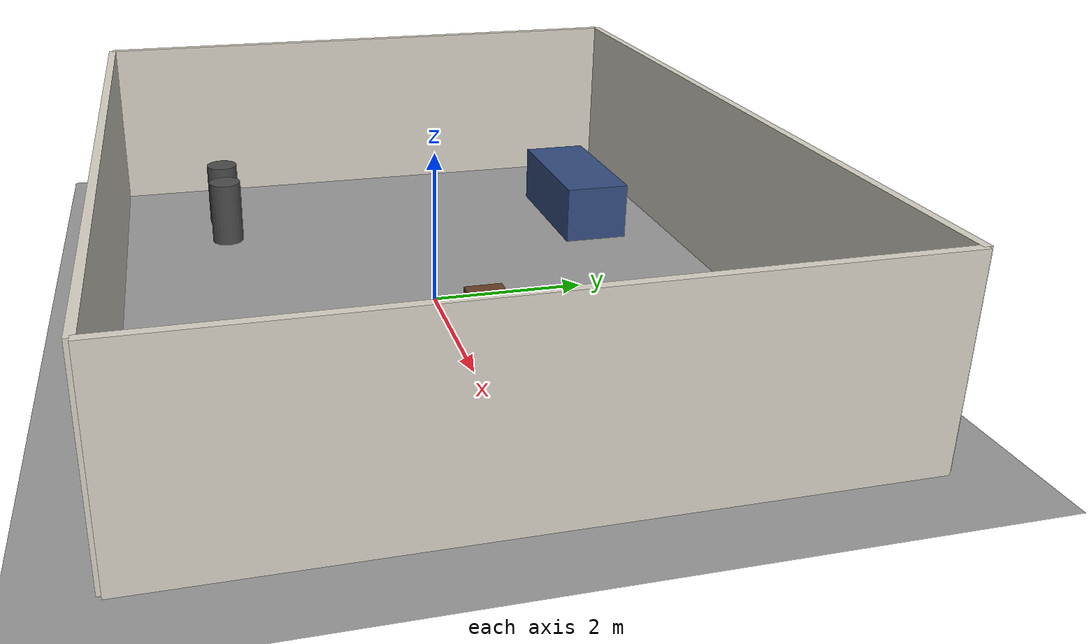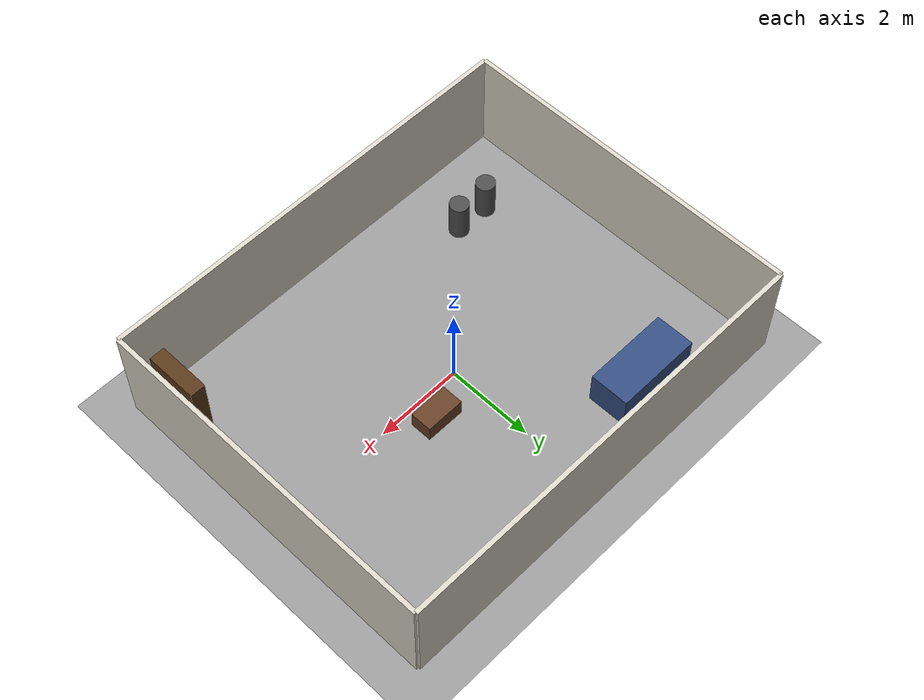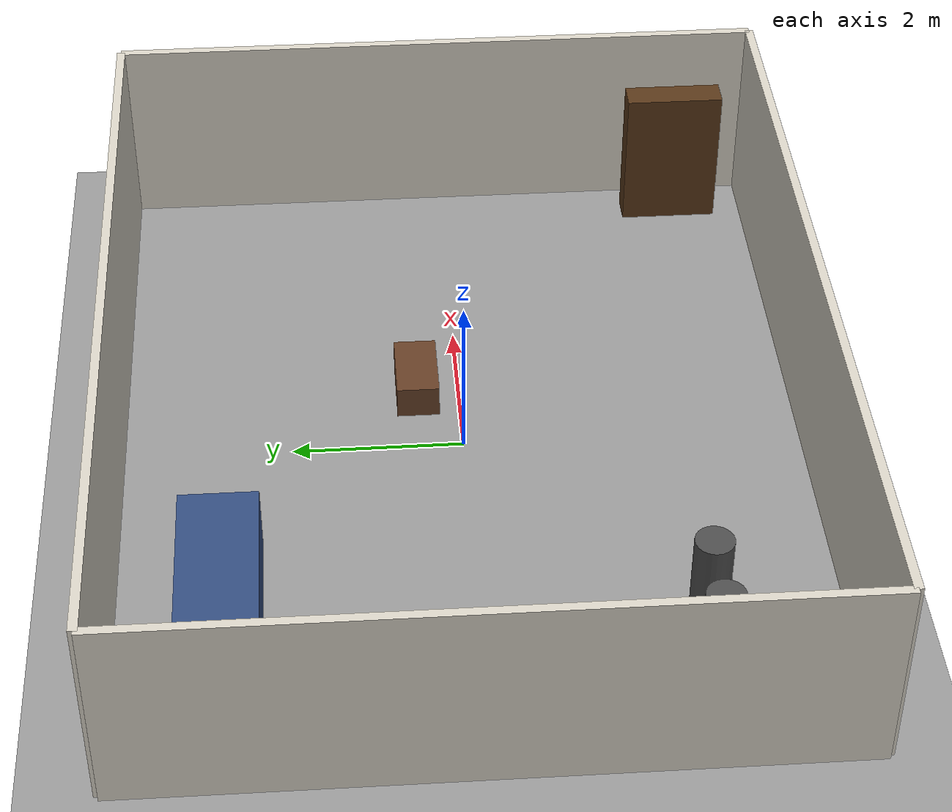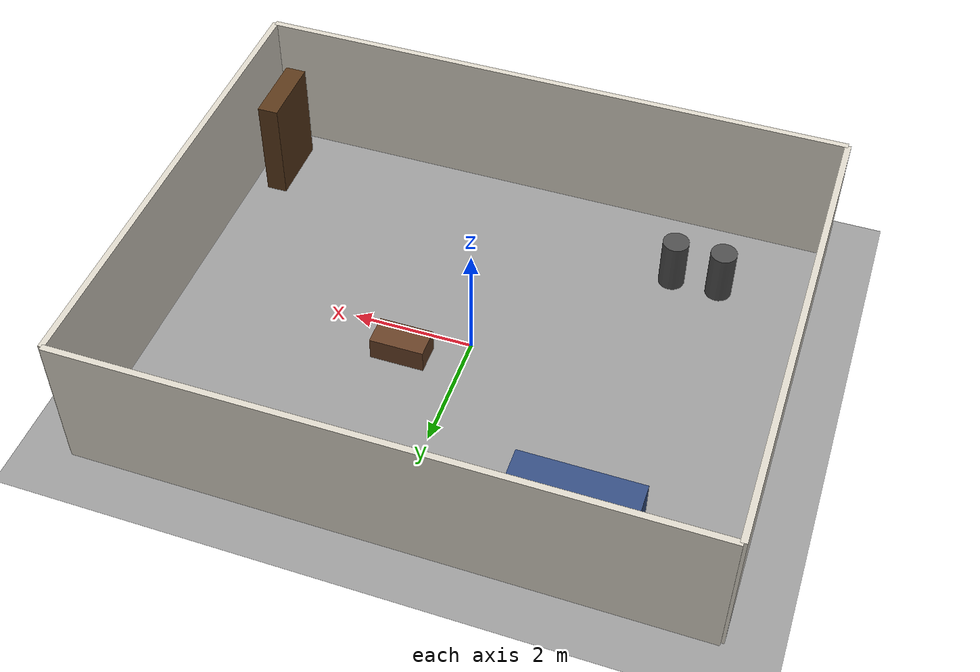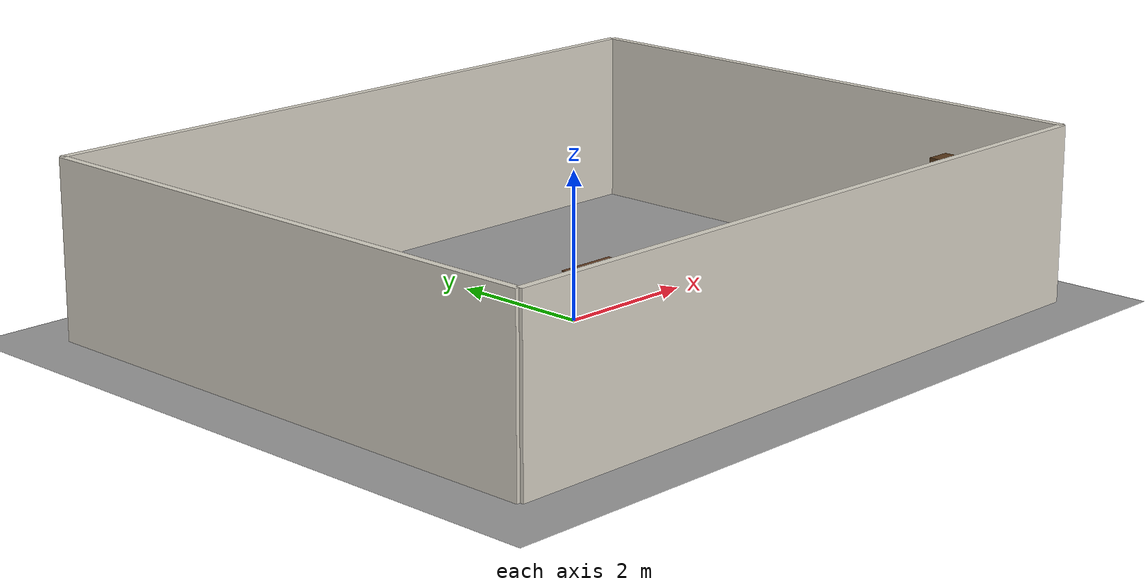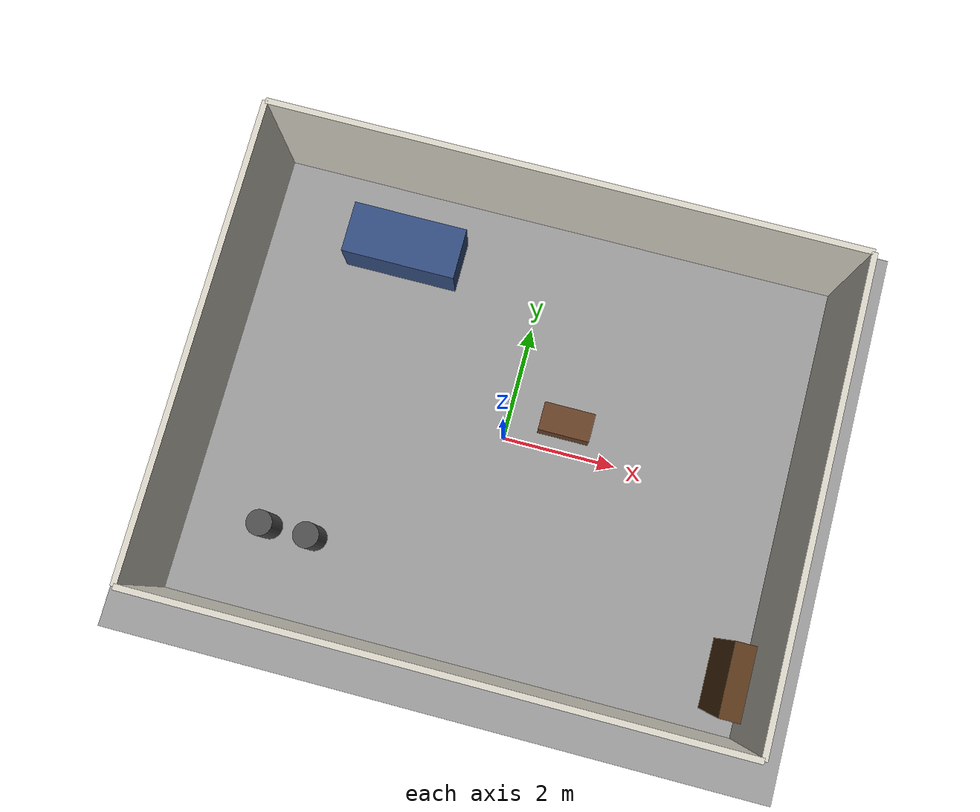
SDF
<?xml version="1.0" ?>
<sdf version="1.9">
  <world name="living_room">

    <physics name="1ms" type="ignored">
      <max_step_size>0.001</max_step_size>
      <real_time_factor>1.0</real_time_factor>
    </physics>

    <plugin filename="gz-sim-physics-system" name="gz::sim::systems::Physics"/>
    <plugin filename="gz-sim-user-commands-system" name="gz::sim::systems::UserCommands"/>
    <plugin filename="gz-sim-scene-broadcaster-system" name="gz::sim::systems::SceneBroadcaster"/>
    <plugin filename="gz-sim-sensors-system" name="gz::sim::systems::Sensors">
      <render_engine>ogre2</render_engine>
    </plugin>
    <plugin filename="gz-sim-imu-system" name="gz::sim::systems::Imu"/>
    <plugin filename="gz-sim-contact-system" name="gz::sim::systems::Contact"/>

    <light type="directional" name="sun">
      <cast_shadows>true</cast_shadows>
      <pose>0 0 10 0 0 0</pose>
      <diffuse>0.8 0.8 0.8 1</diffuse>
      <specular>0.2 0.2 0.2 1</specular>
      <attenuation>
        <range>1000</range>
        <constant>0.9</constant>
        <linear>0.01</linear>
        <quadratic>0.001</quadratic>
      </attenuation>
      <direction>-0.5 0.1 -0.9</direction>
    </light>

    <model name="ground_plane">
      <static>true</static>
      <link name="link">
        <collision name="collision">
          <geometry>
            <plane>
              <normal>0 0 1</normal>
              <size>10 8</size>
            </plane>
          </geometry>
        </collision>
        <visual name="visual">
          <geometry>
            <plane>
              <normal>0 0 1</normal>
              <size>10 8</size>
            </plane>
          </geometry>
          <material>
            <ambient>0.6 0.6 0.6 1</ambient>
            <diffuse>0.6 0.6 0.6 1</diffuse>
          </material>
        </visual>
      </link>
    </model>

    <!-- Room: 10m x 8m, walls 2.4m tall, 0.1m thick -->
    <model name="wall_north">
      <static>true</static>
      <pose>0 4 1.2 0 0 0</pose>
      <link name="link">
        <collision name="collision">
          <geometry><box><size>10 0.1 2.4</size></box></geometry>
        </collision>
        <visual name="visual">
          <geometry><box><size>10 0.1 2.4</size></box></geometry>
          <material><ambient>0.85 0.83 0.78 1</ambient><diffuse>0.85 0.83 0.78 1</diffuse></material>
        </visual>
      </link>
    </model>

    <model name="wall_south">
      <static>true</static>
      <pose>0 -4 1.2 0 0 0</pose>
      <link name="link">
        <collision name="collision">
          <geometry><box><size>10 0.1 2.4</size></box></geometry>
        </collision>
        <visual name="visual">
          <geometry><box><size>10 0.1 2.4</size></box></geometry>
          <material><ambient>0.85 0.83 0.78 1</ambient><diffuse>0.85 0.83 0.78 1</diffuse></material>
        </visual>
      </link>
    </model>

    <model name="wall_east">
      <static>true</static>
      <pose>5 0 1.2 0 0 1.5708</pose>
      <link name="link">
        <collision name="collision">
          <geometry><box><size>8 0.1 2.4</size></box></geometry>
        </collision>
        <visual name="visual">
          <geometry><box><size>8 0.1 2.4</size></box></geometry>
          <material><ambient>0.85 0.83 0.78 1</ambient><diffuse>0.85 0.83 0.78 1</diffuse></material>
        </visual>
      </link>
    </model>

    <model name="wall_west">
      <static>true</static>
      <pose>-5 0 1.2 0 0 1.5708</pose>
      <link name="link">
        <collision name="collision">
          <geometry><box><size>8 0.1 2.4</size></box></geometry>
        </collision>
        <visual name="visual">
          <geometry><box><size>8 0.1 2.4</size></box></geometry>
          <material><ambient>0.85 0.83 0.78 1</ambient><diffuse>0.85 0.83 0.78 1</diffuse></material>
        </visual>
      </link>
    </model>

    <!-- Furniture: coarse primitives, just obstacles for Nav2 to avoid later -->
    <model name="coffee_table">
      <static>true</static>
      <pose>1.0 0.5 0.2 0 0 0</pose>
      <link name="link">
        <collision name="collision">
          <geometry><box><size>0.9 0.5 0.4</size></box></geometry>
        </collision>
        <visual name="visual">
          <geometry><box><size>0.9 0.5 0.4</size></box></geometry>
          <material><ambient>0.4 0.25 0.15 1</ambient><diffuse>0.4 0.25 0.15 1</diffuse></material>
        </visual>
      </link>
    </model>

    <model name="sofa">
      <static>true</static>
      <pose>-2.5 2.8 0.4 0 0 0</pose>
      <link name="link">
        <collision name="collision">
          <geometry><box><size>2.0 0.9 0.8</size></box></geometry>
        </collision>
        <visual name="visual">
          <geometry><box><size>2.0 0.9 0.8</size></box></geometry>
          <material><ambient>0.2 0.3 0.5 1</ambient><diffuse>0.2 0.3 0.5 1</diffuse></material>
        </visual>
      </link>
    </model>

    <model name="bookshelf">
      <static>true</static>
      <pose>4.5 -3.0 0.9 0 0 0</pose>
      <link name="link">
        <collision name="collision">
          <geometry><box><size>0.35 1.2 1.8</size></box></geometry>
        </collision>
        <visual name="visual">
          <geometry><box><size>0.35 1.2 1.8</size></box></geometry>
          <material><ambient>0.35 0.22 0.1 1</ambient><diffuse>0.35 0.22 0.1 1</diffuse></material>
        </visual>
      </link>
    </model>

    <model name="dining_chair_1">
      <static>true</static>
      <pose>-3.5 -2.5 0.45 0 0 0</pose>
      <link name="link">
        <collision name="collision">
          <geometry><cylinder><radius>0.22</radius><length>0.9</length></cylinder></geometry>
        </collision>
        <visual name="visual">
          <geometry><cylinder><radius>0.22</radius><length>0.9</length></cylinder></geometry>
          <material><ambient>0.3 0.3 0.3 1</ambient><diffuse>0.3 0.3 0.3 1</diffuse></material>
        </visual>
      </link>
    </model>

    <model name="dining_chair_2">
      <static>true</static>
      <pose>-2.7 -2.5 0.45 0 0 0</pose>
      <link name="link">
        <collision name="collision">
          <geometry><cylinder><radius>0.22</radius><length>0.9</length></cylinder></geometry>
        </collision>
        <visual name="visual">
          <geometry><cylinder><radius>0.22</radius><length>0.9</length></cylinder></geometry>
          <material><ambient>0.3 0.3 0.3 1</ambient><diffuse>0.3 0.3 0.3 1</diffuse></material>
        </visual>
      </link>
    </model>

  </world>
</sdf>
